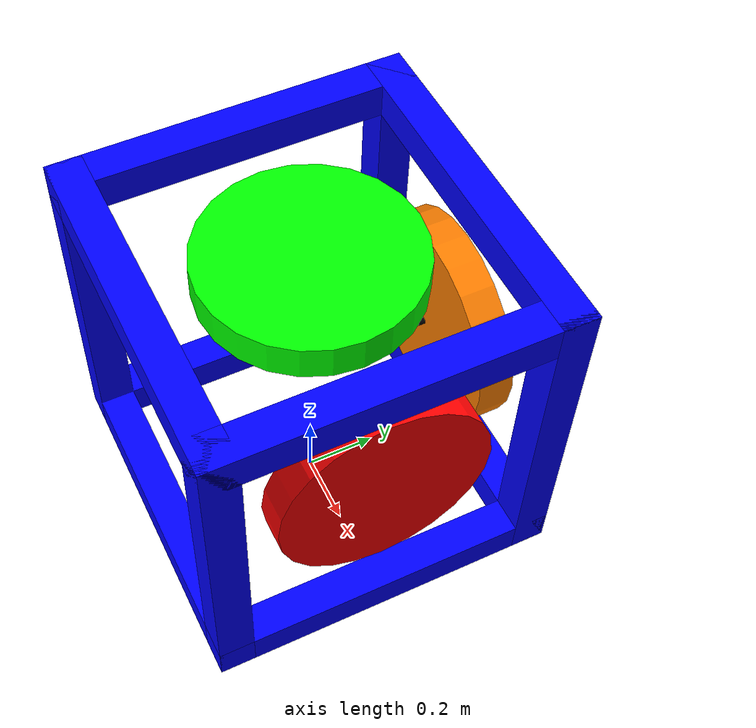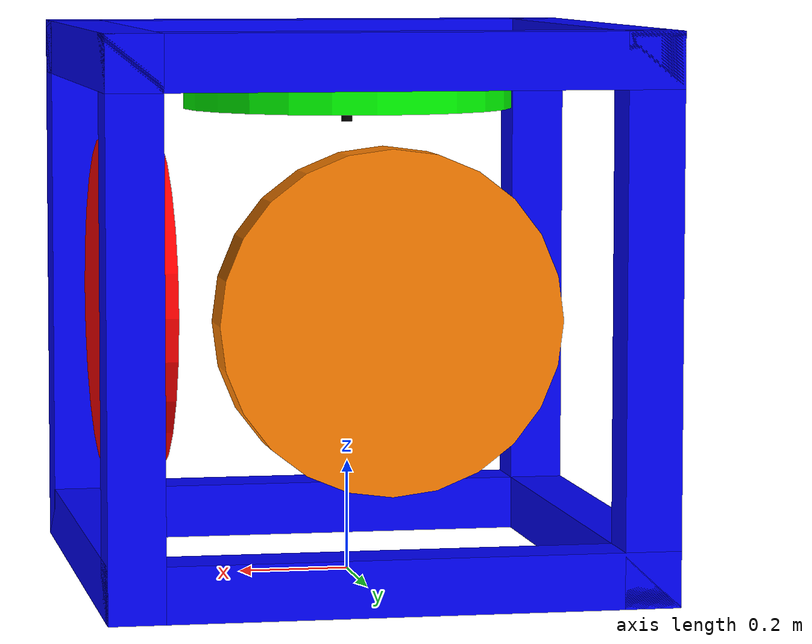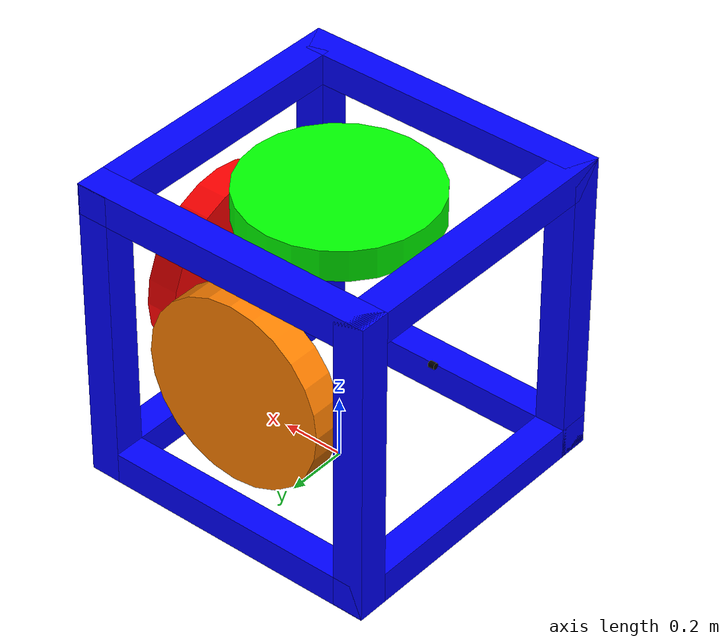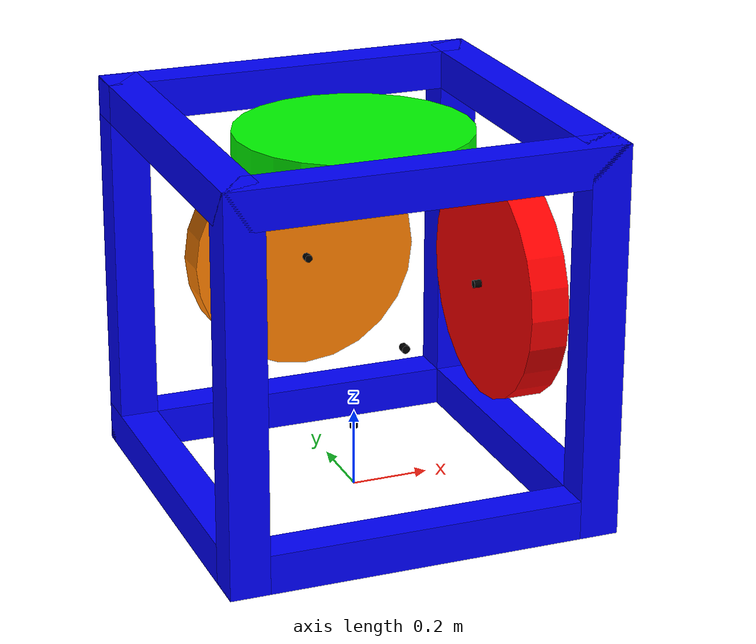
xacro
<?xml version="1.0"?>
<robot xmlns:xacro="http://www.ros.org/wiki/xacro" name="robot1">

  <!-- This first link called "my world" is empty -->
  <link name="my world"></link>

  <!-- The base origin is offset from the world origin. -->
  <joint name="base_joint" type="fixed">
    <origin xyz="0 0 0" rpy="0 0 0"/>
    <parent link="my world"/>
    <child link="cube_frame"/>
  </joint>

  <!-- Define properties for cube dimensions -->
  <xacro:property name="cube_length" value="1.0"/>    <!-- Length of the cube -->
  <xacro:property name="cube_girth" value="0.1"/>     <!-- Thickness of the edges -->

  <!-- Center coordinates of the cube -->
  <xacro:property name="cube_x" value="0.0"/>
  <xacro:property name="cube_y" value="0.0"/>
  <xacro:property name="cube_z" value="${cube_length / 2}"/> <!-- Half the cube length -->

  <!-- Define properties for the disk dimensions -->
  <xacro:property name="disk_radius" value="0.3"/>        <!-- Radius of the disk -->
  <xacro:property name="disk_thickness" value="0.1"/>     <!-- Thickness (height) of the disk -->

  <!-- Define properties for the connector dimensions -->
  <xacro:property name="connector_radius" value="0.01"/>        <!-- Radius of the connector -->
  <xacro:property name="connector_thickness" value="0.02"/>     <!-- Thickness (height) of the connector -->

  <!-- Defining colors -->
  <xacro:property name="red" value="1 0 0 1"/>
  <xacro:property name="yellow" value="1 0.5 0 1"/>
  <xacro:property name="green" value="0 1 0 1"/>

  <!-- Macro for defining a visual edge -->
  <xacro:macro name="visual_edge" params="edge x y z r p yaw">
    <visual name="${edge}">
      <origin xyz="${x} ${y} ${z}" rpy="${r} ${p} ${yaw}"/>
      <geometry>
        <box size="${cube_girth} ${cube_girth} ${cube_length}"/>
      </geometry>
      <material name="blue">
        <color rgba="0 0 1 1"/> <!-- Blue color with RGBA values -->
      </material>
      <!-- Material and other visual properties can be added here -->
    </visual>
  </xacro:macro>

  <!-- Macro for defining a disk link-->
  <xacro:macro name="disk_link_macro" params="name xyz rpy radius thickness rgba">
    <link name="${name}">
      <!-- Visual element for the disk -->
      <visual name="disk">
        <origin xyz="${xyz}" rpy="${rpy}"/>
        <geometry>
          <cylinder radius="${radius}" length="${thickness}"/>
        </geometry>
        <material name="color_${rgba}">
          <color rgba="${rgba}"/> <!-- Color with RGBA values -->
        </material>
      </visual>

      <!-- Collision properties for the disk -->
      <collision name="disk_collision">
        <origin xyz="${xyz}" rpy="${rpy}"/>
        <geometry>
          <cylinder radius="${radius}" length="${thickness}"/>
        </geometry>
      </collision>

      <!-- Inertial properties for the disk -->
      <inertial>
        <origin xyz="${xyz}"/>
        <mass value="1.0"/>
        <inertia ixx="0.1" ixy="0.0" ixz="0.0" iyy="0.1" iyz="0.0" izz="0.1"/>
      </inertial>
    </link>
  </xacro:macro>

    <!-- Macro to create a single connector link -->
  <xacro:macro name="connector_link_macro" params="name xyz rpy radius thickness rgba">
    <link name="${name}">
      <!-- Visual element for the disk -->
      <visual name="connector_visual">
        <origin xyz="${xyz}" rpy="${rpy}"/>
        <geometry>
          <cylinder radius="${radius}" length="${thickness}"/>
        </geometry>
        <material name="color_${rgba}">
          <color rgba="${rgba}"/> <!-- Color with RGBA values -->
        </material>
      </visual>

      <!-- Collision properties for the disk -->
      <collision name="connector_collision">
        <origin xyz="${xyz}" rpy="${rpy}"/>
        <geometry>
          <cylinder radius="${radius}" length="${thickness}"/>
        </geometry>
      </collision>

      <!-- Inertial Properties -->
      <inertial>
      <origin xyz="${xyz}"/>
        <mass value="0.1"/>
        <inertia ixx="0.0001" ixy="0.0" ixz="0.0"
                 iyy="0.0001" iyz="0.0"
                 izz="0.0001"/>
      </inertial>
    </link>

  </xacro:macro>

  <!-- Main robot model -->
  <link name="cube_frame">
    <!-- Visual element for the main cube -->
    <xacro:visual_edge edge="ZXY" x="${(cube_length - cube_girth) / 2}" y="${cube_y+(cube_length - cube_girth) / 2}" z="${cube_z}" r="0" p="0" yaw="0"/>
    <xacro:visual_edge edge="ZX_Y" x="${-(cube_length - cube_girth) / 2}" y="${cube_y+(cube_length - cube_girth) / 2}" z="${cube_z}" r="0" p="0" yaw="0"/>
    <xacro:visual_edge edge="ZXY_" x="${(cube_length - cube_girth) / 2}" y="${cube_y-(cube_length - cube_girth) / 2}" z="${cube_z}" r="0" p="0" yaw="0"/>
    <xacro:visual_edge edge="ZX_Y_" x="${-(cube_length - cube_girth) / 2}" y="${cube_y-(cube_length - cube_girth) / 2}" z="${cube_z}" r="0" p="0" yaw="0"/>

    <xacro:visual_edge edge="XYZ" y="${(cube_length - cube_girth) / 2}" z="${cube_z+(cube_length/2)-(cube_girth/2)}" x="${cube_x}" r="0" p="${pi/2}" yaw="0"/>
    <xacro:visual_edge edge="XY_Z" y="${-(cube_length - cube_girth) / 2}" z="${cube_z+(cube_length/2)-(cube_girth/2)}" x="${cube_x}" r="0" p="${pi/2}" yaw="0"/>
    <xacro:visual_edge edge="XYZ_" y="${(cube_length - cube_girth) / 2}" z="${cube_z-(cube_length/2)+(cube_girth/2)}" x="${cube_x}" r="0" p="${pi/2}" yaw="0"/>
    <xacro:visual_edge edge="XY_Z_" y="${-(cube_length - cube_girth) / 2}" z="${cube_z-(cube_length/2)+(cube_girth/2)}" x="${cube_x}" r="0" p="${pi/2}" yaw="0"/>

    <xacro:visual_edge edge="YZX" z="${cube_z+(cube_length/2)-(cube_girth/2)}" x="${cube_x+(cube_length - cube_girth) / 2}" y="${cube_y}" r="${pi/2}" p="0" yaw="0"/>
    <xacro:visual_edge edge="YZ_X" z="${cube_z-(cube_length/2)+(cube_girth/2)}" x="${cube_x+(cube_length - cube_girth) / 2}" y="${cube_y}" r="${pi/2}" p="0" yaw="0"/>
    <xacro:visual_edge edge="YZX_" z="${cube_z+(cube_length/2)-(cube_girth/2)}" x="${cube_x-(cube_length - cube_girth) / 2}" y="${cube_y}" r="${pi/2}" p="0" yaw="0"/>
    <xacro:visual_edge edge="YZ_X_" z="${cube_z-(cube_length/2)+(cube_girth/2)}" x="${cube_x-(cube_length - cube_girth) / 2}" y="${cube_y}" r="${pi/2}" p="0" yaw="0"/>

    <!-- Collision properties for the main link -->
    <collision name="collision">
      <origin xyz="${cube_x} ${cube_y} ${cube_z}"/>
      <geometry>
        <box size="${cube_length} ${cube_length} ${cube_length}"/>
      </geometry>
    </collision>

    <!-- Inertial properties -->
    <inertial>
      <origin xyz="${cube_x} ${cube_y} ${cube_z}"/>
      <mass value="1.0"/>
      <inertia ixx="0.1" ixy="0.0" ixz="0.0" iyy="0.1" iyz="0.0" izz="0.1"/>
    </inertial>
  </link>

  <!-- Defining the Three Disks -->
  <xacro:disk_link_macro name="disk_link_X" xyz="0 0 0" rpy="0 ${pi/2} 0" radius="${disk_radius}" thickness="${disk_thickness}" rgba="${red}"/>
  <xacro:disk_link_macro name="disk_link_Y" xyz="0 0 0" rpy="${pi/2} 0 0" radius="${disk_radius}" thickness="${disk_thickness}" rgba="${yellow}"/>
  <xacro:disk_link_macro name="disk_link_Z" xyz="0 0 0" rpy="0 0 0" radius="${disk_radius}" thickness="${disk_thickness}" rgba="${green}"/>

  <!-- Defining the connectors -->
  <xacro:connector_link_macro name="connector_11" xyz="0 0 0" rpy="0 ${pi/2} 0" radius="${connector_radius}" thickness="${connector_thickness}" rgba="0 0 0 1"/>
  <xacro:connector_link_macro name="connector_12" xyz="0 0 0" rpy="0 ${pi/2} 0" radius="${connector_radius}" thickness="${connector_thickness}" rgba="0 0 0 1"/>
  <xacro:connector_link_macro name="connector_13" xyz="0 0 0" rpy="${pi/2} 0 0" radius="${connector_radius}" thickness="${connector_thickness}" rgba="0 0 0 1"/>
  <xacro:connector_link_macro name="connector_14" xyz="0 0 0" rpy="${pi/2} 0 0" radius="${connector_radius}" thickness="${connector_thickness}" rgba="0 0 0 1"/>
  <xacro:connector_link_macro name="connector_15" xyz="0 0 0" rpy="0 0 0" radius="${connector_radius}" thickness="${connector_thickness}" rgba="0 0 0 1"/>
  <xacro:connector_link_macro name="connector_16" xyz="0 0 0" rpy="0 0 0" radius="${connector_radius}" thickness="${connector_thickness}" rgba="0 0 0 1"/>

  <!-- Joint between cube_frame and connectors -->
  <joint name="connector_joint_x" type="revolute">
	<parent link="cube_frame"/>
	<child link="connector_11"/>
	<origin xyz="${cube_x+(cube_length/2)-3.25*connector_thickness-disk_thickness} ${cube_y} ${cube_z}"/>
	<axis xyz="1 0 0"/> <!-- Rotation axis along the y-axis -->
	<limit upper="0" lower="0" effort="0.0" velocity="0.0"/> <!-- Joint effort and velocity limits -->
  </joint>

 <joint name="connector_joint_x_" type="revolute">
	<parent link="cube_frame"/>
	<child link="connector_12"/>
	<origin xyz="${cube_x-(cube_length/2)+3.25*connector_thickness+disk_thickness} ${cube_y} ${cube_z}"/>
	<axis xyz="1 0 0"/> <!-- Rotation axis along the y-axis -->
	<limit upper="0" lower="0" effort="0.0" velocity="0.0"/> <!-- Joint effort and velocity limits -->
  </joint>
  <joint name="connector_joint_y" type="revolute">
	<parent link="cube_frame"/>
	<child link="connector_13"/>
	<origin xyz="${cube_x} ${cube_y+(cube_length/2)-3.25*connector_thickness-disk_thickness} ${cube_z}"/>
	<axis xyz="1 0 0"/> <!-- Rotation axis along the y-axis -->
	<limit upper="0" lower="0" effort="0.0" velocity="0.0"/> <!-- Joint effort and velocity limits -->
  </joint>
  <joint name="connector_joint_y_" type="revolute">
	<parent link="cube_frame"/>
	<child link="connector_14"/>
	<origin xyz="${cube_x} ${cube_y-(cube_length/2)+3.25*connector_thickness+disk_thickness} ${cube_z}"/>
	<axis xyz="1 0 0"/> <!-- Rotation axis along the y-axis -->
	<limit upper="0" lower="0" effort="0.0" velocity="0.0"/> <!-- Joint effort and velocity limits -->
  </joint>
  <joint name="connector_joint_z" type="revolute">
	<parent link="cube_frame"/>
	<child link="connector_15"/>
	<origin xyz="${cube_x} ${cube_y} ${cube_z+(cube_length/2)-3.25*connector_thickness-disk_thickness}"/>
	<axis xyz="1 0 0"/> <!-- Rotation axis along the y-axis -->
	<limit upper="0" lower="0" effort="0.0" velocity="0.0"/> <!-- Joint effort and velocity limits -->
  </joint>
  <joint name="connector_joint_z_" type="revolute">
	<parent link="cube_frame"/>
	<child link="connector_16"/>
	<origin xyz="${cube_x} ${cube_y} ${cube_z-(cube_length/2)+3.25*connector_thickness+disk_thickness}"/>
	<axis xyz="1 0 0"/> <!-- Rotation axis along the y-axis -->
	<limit upper="0" lower="0" effort="0.0" velocity="0.0"/> <!-- Joint effort and velocity limits -->
  </joint>

  <!-- Joint between cube_frame and disk_links -->
  <joint name="cube_disk_joint_X" type="continuous">
    <origin xyz="${cube_x+(cube_length/2)-disk_thickness} ${cube_y} ${cube_z}"/>
    <parent link="cube_frame"/>
    <child link="disk_link_X"/>
    <axis xyz="1 0 0"/> <!-- Rotation axis along the x-axis -->
    <limit effort="1000.0" velocity="1000.0"/> <!-- Joint effort and velocity limits -->
  </joint>

  <joint name="cube_disk_joint_Y" type="continuous">
    <origin xyz="${cube_x} ${cube_y+(cube_length/2)-disk_thickness} ${cube_z}"/>
    <parent link="cube_frame"/>
    <child link="disk_link_Y"/>
    <axis xyz="0 1 0"/> <!-- Rotation axis along the y-axis -->
    <limit effort="1000.0" velocity="1000.0"/> <!-- Joint effort and velocity limits -->
  </joint>

  <joint name="cube_disk_joint_Z" type="continuous">
    <origin xyz="${cube_x} ${cube_y} ${cube_z+(cube_length/2)-disk_thickness}"/>
    <parent link="cube_frame"/>
    <child link="disk_link_Z"/>
    <axis xyz="0 0 1"/> <!-- Rotation axis along the z-axis -->
    <limit effort="1000.0" velocity="1000.0"/> <!-- Joint effort and velocity limits -->
  </joint>

  <!-- JointController plugin to control the joint velocity (for cube_disk_joint_X)-->
  <gazebo>
    <plugin filename="libignition-gazebo-joint-controller-system.so"
            name="ignition::gazebo::systems::JointController">
      <joint_name>cube_disk_joint_X</joint_name>
      <topic>cmd_vel_r</topic>
      <!-- PID controller for smooth velocity control -->
      <use_force_commands>true</use_force_commands>
      <p_gain>0.15</p_gain>
    </plugin>

    <!-- JointController plugin to control the joint velocity (for cube_disk_joint_Y)-->
    <plugin filename="libignition-gazebo-joint-controller-system.so"
            name="ignition::gazebo::systems::JointController">
      <joint_name>cube_disk_joint_Y</joint_name>
      <topic>cmd_vel_y</topic>
      <!-- PID controller for smooth velocity control -->
      <use_force_commands>true</use_force_commands>
      <p_gain>0.15</p_gain>
    </plugin>

    <!-- JointController plugin to control the joint velocity (for cube_disk_joint_Z)-->
    <plugin filename="libignition-gazebo-joint-controller-system.so"
            name="ignition::gazebo::systems::JointController">
      <joint_name>cube_disk_joint_Z</joint_name>
      <topic>cmd_vel_g</topic>
      <!-- PID controller for smooth velocity control -->
      <use_force_commands>true</use_force_commands>
      <p_gain>0.15</p_gain>
    </plugin>
  </gazebo>

</robot>
